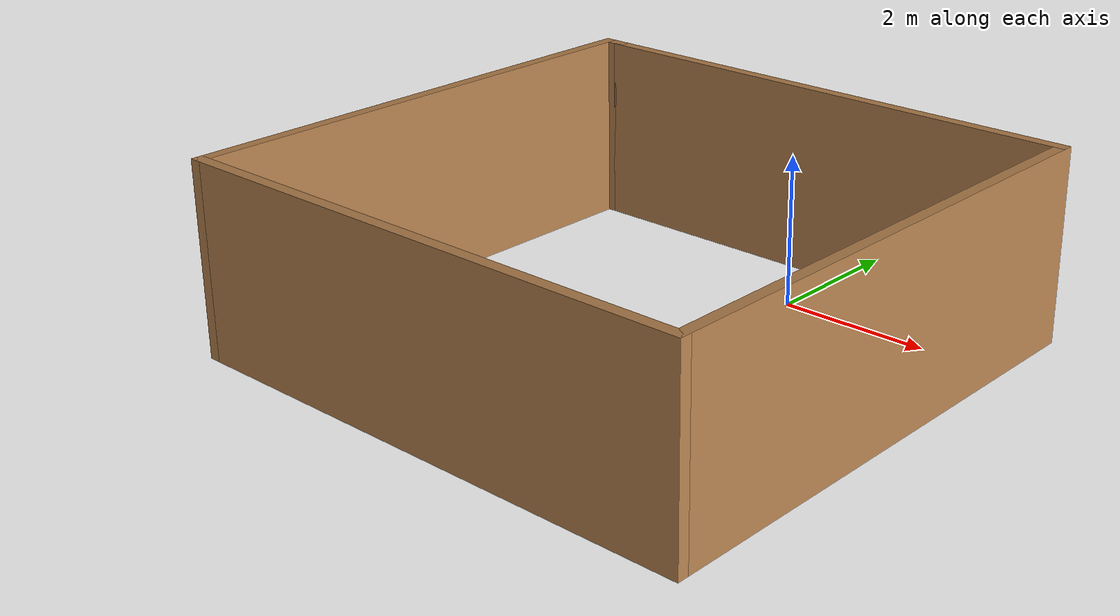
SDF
<?xml version='1.0'?>
<sdf version='1.7'>
  <model name='BOX'>
    <pose>-0.549119 -2.30092 0 0 -0 0</pose>
    <link name='Wall_2'>
      <collision name='Wall_2_Collision'>
        <geometry>
          <box>
            <size>7 0.15 2.5</size>
          </box>
        </geometry>
        <pose>0 0 1.25 0 -0 0</pose>
      </collision>
      <visual name='Wall_2_Visual'>
        <pose>0 0 1.25 0 -0 0</pose>
        <geometry>
          <box>
            <size>7 0.15 2.5</size>
          </box>
        </geometry>
        <material>
          <script>
            <uri>file://media/materials/scripts/gazebo.material</uri>
            <name>Gazebo/Wood</name>
          </script>
          <ambient>1 1 1 1</ambient>
        </material>
        <meta>
          <layer>0</layer>
        </meta>
      </visual>
      <pose>0.125 3.425 0 0 -0 0</pose>
    </link>
    <link name='Wall_3'>
      <collision name='Wall_3_Collision'>
        <geometry>
          <box>
            <size>7 0.15 2.5</size>
          </box>
        </geometry>
        <pose>0 0 1.25 0 -0 0</pose>
      </collision>
      <visual name='Wall_3_Visual'>
        <pose>0 0 1.25 0 -0 0</pose>
        <geometry>
          <box>
            <size>7 0.15 2.5</size>
          </box>
        </geometry>
        <material>
          <script>
            <uri>file://media/materials/scripts/gazebo.material</uri>
            <name>Gazebo/Wood</name>
          </script>
          <ambient>1 1 1 1</ambient>
        </material>
        <meta>
          <layer>0</layer>
        </meta>
      </visual>
      <pose>3.55 0 0 0 -0 -1.5708</pose>
    </link>
    <link name='Wall_4'>
      <collision name='Wall_4_Collision'>
        <geometry>
          <box>
            <size>7.25 0.15 2.5</size>
          </box>
        </geometry>
        <pose>0 0 1.25 0 -0 0</pose>
      </collision>
      <visual name='Wall_4_Visual'>
        <pose>0 0 1.25 0 -0 0</pose>
        <geometry>
          <box>
            <size>7.25 0.15 2.5</size>
          </box>
        </geometry>
        <material>
          <script>
            <uri>file://media/materials/scripts/gazebo.material</uri>
            <name>Gazebo/Wood</name>
          </script>
          <ambient>1 0.764706 0.305882 1</ambient>
        </material>
        <meta>
          <layer>0</layer>
        </meta>
      </visual>
      <pose>-0 -3.425 0 0 -0 3.14159</pose>
    </link>
    <link name='Wall_5'>
      <collision name='Wall_5_Collision'>
        <geometry>
          <box>
            <size>7 0.15 2.5</size>
          </box>
        </geometry>
        <pose>0 0 1.25 0 -0 0</pose>
      </collision>
      <visual name='Wall_5_Visual'>
        <pose>0 0 1.25 0 -0 0</pose>
        <geometry>
          <box>
            <size>7 0.15 2.5</size>
          </box>
        </geometry>
        <material>
          <script>
            <uri>file://media/materials/scripts/gazebo.material</uri>
            <name>Gazebo/Wood</name>
          </script>
          <ambient>1 1 1 1</ambient>
        </material>
        <meta>
          <layer>0</layer>
        </meta>
      </visual>
      <pose>-3.55 0 0 0 -0 1.5708</pose>
    </link>
    <link name='Wall_6'>
      <collision name='Wall_6_Collision'>
        <geometry>
          <box>
            <size>0.15 0.15 2.5</size>
          </box>
        </geometry>
        <pose>0 0 1.25 0 -0 0</pose>
      </collision>
      <visual name='Wall_6_Visual'>
        <pose>0 0 1.25 0 -0 0</pose>
        <geometry>
          <box>
            <size>0.15 0.15 2.5</size>
          </box>
        </geometry>
        <material>
          <script>
            <uri>file://media/materials/scripts/gazebo.material</uri>
            <name>Gazebo/Grey</name>
          </script>
          <ambient>1 1 1 1</ambient>
        </material>
        <meta>
          <layer>0</layer>
        </meta>
      </visual>
      <pose>-3.55 3.425 0 0 -0 0</pose>
    </link>
    <link name='Wall_7'>
      <collision name='Wall_7_Collision'>
        <geometry>
          <box>
            <size>0.4 0.15 2.5</size>
          </box>
        </geometry>
        <pose>0 0 1.25 0 -0 0</pose>
      </collision>
      <visual name='Wall_7_Visual'>
        <pose>0 0 1.25 0 -0 0</pose>
        <geometry>
          <box>
            <size>0.4 0.15 2.5</size>
          </box>
        </geometry>
        <material>
          <script>
            <uri>file://media/materials/scripts/gazebo.material</uri>
            <name>Gazebo/Wood</name>
          </script>
          <ambient>1 1 1 1</ambient>
        </material>
        <meta>
          <layer>0</layer>
        </meta>
      </visual>
      <pose>-3.425 3.425 0 0 -0 0</pose>
    </link>
    <static>1</static>
  </model>
</sdf>
